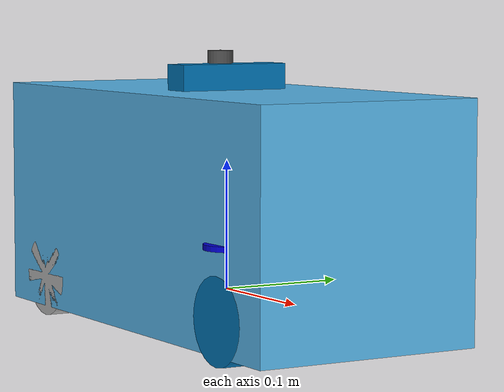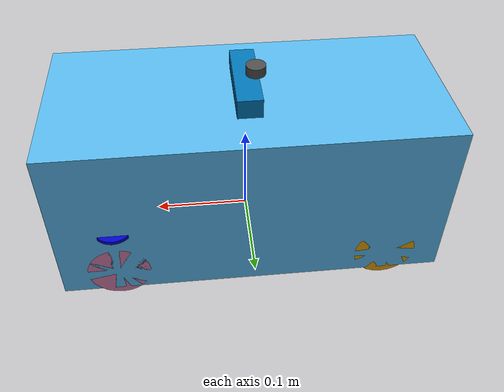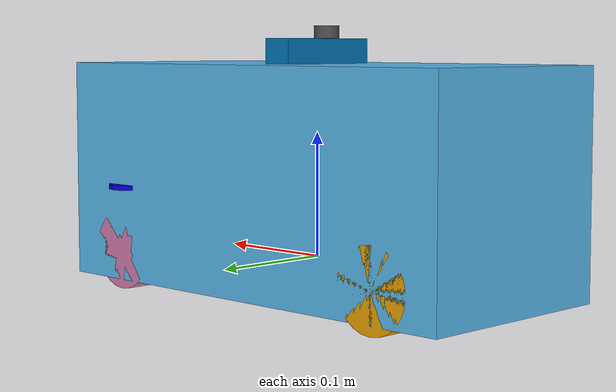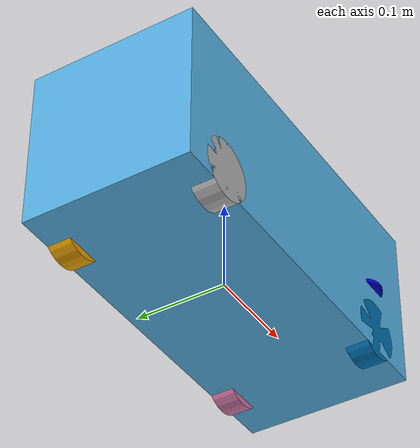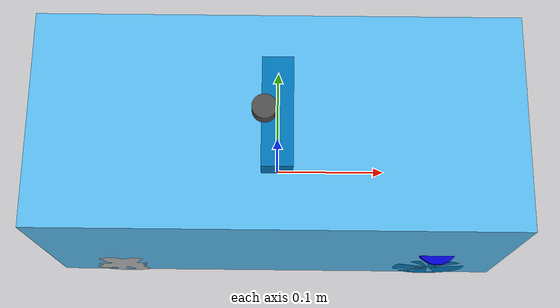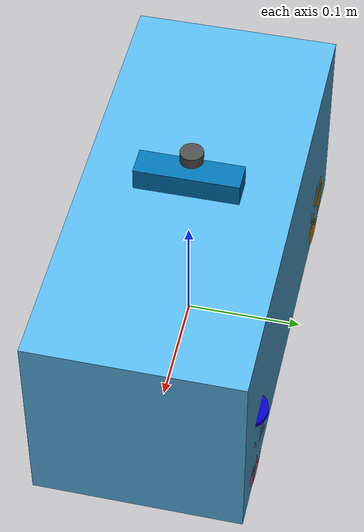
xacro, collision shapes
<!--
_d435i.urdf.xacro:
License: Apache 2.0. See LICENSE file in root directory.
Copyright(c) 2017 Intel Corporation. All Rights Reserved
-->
<?xml version="1.0"?>
<robot name="car" xmlns:xacro="http://wiki.ros.org/xacro">
  <!-- Include xacro for inertials, materials and wheels -->
  <xacro:include filename="$(find robot_description)/urdf/wheel.xacro"/>
  <xacro:include filename="$(find robot_description)/urdf/lidar.xacro"/>
  <xacro:include filename="$(find robot_description)/urdf/_d435i.urdf.xacro"/>
  <xacro:include filename="$(find robot_description)/urdf/inertials.xacro"/>

  <xacro:property name="robot_namespace" value="/car"/>
   <gazebo>
    <!-- Load ros_control plugin using the steer_bot_hardware_gazebo
    implementation of the hardware_interface::RobotHW -->
    <plugin name="gazebo_ros_control" filename="libgazebo_ros_control.so">
      <robotNamespace>${robot_namespace}</robotNamespace>
      <robotSimType>steer_bot_hardware_gazebo/SteerBotHardwareGazebo</robotSimType>
      <legacyModeNS>false</legacyModeNS>
    </plugin>
  </gazebo>

  <!-- Math constants -->
  <xacro:property name="deg_to_rad" value="0.01745329251994329577"/>

  <!-- Robot dimensions -->
  <xacro:property name="car_length" value="0.4" />
  <xacro:property name="car_width" value="0.18" />
  <xacro:property name="car_height" value="0.18" />
  <xacro:property name="car_mass" value="2" />

  <!-- Wheel link dimensions -->
  <xacro:property name="wheel_radius" value="0.0325" />
  <xacro:property name="wheel_thickness" value="0.025" />
  <xacro:property name="wheel_mass" value="0.00355" />

  <!-- Steering link dimensions -->
  <xacro:property name="steer_radius" value="0.02" />
  <xacro:property name="steer_thickness" value="0.004" />
  <xacro:property name="steer_mass" value="0.0008" />

  <!-- Axle positions -->
  <xacro:property name="axle_offset" value="0.14" />
  <xacro:property name="steer_offset" value="0.02" />

  <xacro:macro name="dummy_visual">
    <visual>
      <geometry>
        <box size =".001 .001 .001"/>
      </geometry>
      <xacro:default_origin />
    </visual>
  </xacro:macro>

  <xacro:macro name="default_origin">
       <origin xyz="0 0 0" rpy="0 0 0"/>
  </xacro:macro>

  <!-- Base link -->
  <link name="base_link">
    <collision>
        <xacro:default_origin />
        <geometry>
            <box size="0.001 0.001 0.001"/>
        </geometry>
    </collision>
    <xacro:dummy_visual />
  </link>

  <link name="body">
    <xacro:solid_cuboid_inertial
        rpy="0 0 0" xyz="0 0 0"
        mass="${car_mass}"
        x="${car_length}" y="${car_width}" z="${car_height}" />

    <collision>
        <xacro:default_origin />
        <geometry>
            <box size="${car_length} ${car_width} ${car_height}"/>
        </geometry>
    </collision>

    <visual>
      <geometry>
        <!--Dimensions: 37x20xheight   height may very depending on components, should be ~20cm-->
        <mesh filename="package://robot_description/models/car_robot/meshes/car.dae"/>
      </geometry>
      <origin rpy="0 0 0" xyz="0.01 0 0"/>
      <xacro:default_origin />
    </visual>
  </link>

  <joint name="base_link_to_body" type="fixed">
    <parent link="base_link"/>
    <child link="body"/>
    <origin xyz="0 0 ${wheel_radius*2}"/>
    <axis   xyz="0 1 0"/>
  </joint>

  <!-- Front steer and rear wheel joints required for ackermann_steering_controller -->
  <xacro:front_steer
    name="front"
    parent="base"
    steer_radius="${steer_radius}"
    steer_thickness="${steer_thickness}"
    steer_mass="${steer_mass}"
    axle_offset="${axle_offset}"
    steer_height="${wheel_radius+steer_offset}">
  </xacro:front_steer>

  <!-- Steerable front side wheels -->
  <xacro:front_wheel_lr
    name="front_right"
    parent="base"
    reflect="-1"
    wheel_radius="${wheel_radius}"
    wheel_thickness="${wheel_thickness}"
    wheel_mass="${wheel_mass}"
    wheel_is_right="1"
    steer_radius="${steer_radius}"
    steer_thickness="${steer_thickness}"
    steer_mass="${steer_mass}"
    car_length="${car_length}"
    car_width="${car_width}"
    axle_offset="${axle_offset}"
    steer_height="${wheel_radius+steer_offset}">
  </xacro:front_wheel_lr>
  <xacro:front_wheel_lr
    name="front_left"
    parent="base"
    reflect="1"
    wheel_radius="${wheel_radius}"
    wheel_thickness="${wheel_thickness}"
    wheel_mass="${wheel_mass}"
    wheel_is_right="0"
    steer_radius="${steer_radius}"
    steer_thickness="${steer_thickness}"
    steer_mass="${steer_mass}"
    car_length="${car_length}"
    car_width="${car_width}"
    axle_offset="${axle_offset}"
    steer_height="${wheel_radius+steer_offset}">
  </xacro:front_wheel_lr>

  <!-- Rear side wheels -->
  <xacro:rear_wheel_lr
    name="rear_right"
    parent="base"
    wheel_radius="${wheel_radius}"
    wheel_thickness="${wheel_thickness}"
    wheel_mass="${wheel_mass}"
    wheel_is_right="1">
    <origin xyz="${-axle_offset} ${-car_width/2+wheel_thickness/2} 0" rpy="${-90 * deg_to_rad} 0 0"/>
  </xacro:rear_wheel_lr>
  <xacro:rear_wheel_lr
    name="rear_left"
    parent="base"
    wheel_radius="${wheel_radius}"
    wheel_thickness="${wheel_thickness}"
    wheel_mass="${wheel_mass}"
    wheel_is_right="0">
    <origin xyz="${-axle_offset} ${+car_width/2-wheel_thickness/2} 0" rpy="${-90 * deg_to_rad} 0 0"/>
  </xacro:rear_wheel_lr>

  <!-- rear drive wheel -->
  <xacro:rear_wheel
    name="rear"
    parent="base"
    drive_wheel_radius="${wheel_radius/4}"
    drive_wheel_thickness="${wheel_thickness/2}"
    drive_wheel_mass="${wheel_mass/32}">
    <origin xyz="${-axle_offset} 0 0" rpy="${-90 * deg_to_rad} 0 0"/>
  </xacro:rear_wheel>

  <!--  SENSORS-->
  <xacro:lidar parent="base_link"/>
  <xacro:sensor_d435i parent="base_link"
                      name="D435i_camera"
                      topics_ns="D435i_camera"
                      enable_pointCloud="true"
                      color_width="960"
                      color_height="520"
                      align_depth="true"
                      color_fps="30"
                      depth_width="640"
                      depth_height="360"
                      depth_fps="30">
    <origin xyz="0.0 0.0 0.15" rpy="0.0 0.0 0.0"/>
  </xacro:sensor_d435i>

  <gazebo reference="base_link">
  </gazebo>

</robot>

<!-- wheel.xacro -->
<robot name="wheel" xmlns:xacro="http://wiki.ros.org/xacro">
  <!-- Include xacro for materials and inertials -->
  <xacro:include filename="$(find robot_description)/urdf/materials.xacro"/>
  <xacro:include filename="$(find robot_description)/urdf/inertials.xacro"/>

  <!-- Math constants -->
  <xacro:property name="deg_to_rad" value="0.01745329251994329577"/>

  <!-- Properties -->
  <xacro:property name="steer_effort" value="10.0"/>
  <xacro:property name="steer_velocity" value="5.0"/>
  <xacro:property name="steer_limit_deg" value="60.0"/>

  <!-- Wheel visualization macro -->
  <xacro:macro name="wheel_visual" params="roll">
    <visual>
      <geometry>
        <mesh filename="package://robot_description/models/car_robot/meshes/wheel.dae"/>
      </geometry>
      <origin xyz="0 0 0" rpy="${roll} 0 0"/>
    </visual>
  </xacro:macro>

  <!-- Steering wheel -->
  <xacro:macro name="front_steer"
    params="
      name
      parent
      steer_radius
      steer_thickness
      steer_mass
      axle_offset
      steer_height">
    <link name="${name}_steer_link">
      <visual>
        <origin xyz="0 0 0" rpy="0 0 0"/>
        <geometry>
          <cylinder radius="${steer_radius}" length="${steer_thickness}"/>
        </geometry>
        <material name="steering_wheel" />
      </visual>
      <collision>
        <origin xyz="0 0 0" rpy="0 0 0"/>
        <geometry>
          <cylinder radius="${steer_radius}" length="${steer_thickness}"/>
        </geometry>
      </collision>
      <xacro:solid_cylinder_inertial
          rpy="0 0 0" xyz="0 0 0"
          mass="${steer_mass}"
          radius="${steer_radius}" length="${steer_thickness}" />
    </link>

    <joint name="${name}_steer_joint" type="revolute">
      <parent link="${parent}_link"/>
      <child link="${name}_steer_link"/>
      <origin xyz="${axle_offset} 0 ${steer_height}" rpy="0 0 0"/>
      <axis xyz="0 0 1"/>
      <limit effort="${steer_effort}"
             lower="${-steer_limit_deg * deg_to_rad}" upper="${steer_limit_deg * deg_to_rad}"
             velocity="${steer_velocity}"/>
    </joint>

    <transmission name="${name}_steer_joint_trans">
      <type>transmission_interface/SimpleTransmission</type>
      <actuator name="${name}_steer_joint_motor">
        <mechanicalReduction>1</mechanicalReduction>
        <hardwareInterface>hardware_interface/PositionJointInterface</hardwareInterface>
      </actuator>
      <joint name="${name}_steer_joint">
        <hardwareInterface>hardware_interface/PositionJointInterface</hardwareInterface>
      </joint>
    </transmission>

    <gazebo reference="${name}_steer_link">
      <material>Gazebo/Yellow</material>
    </gazebo>
  </xacro:macro>

  <!-- STEERING -->

  <!-- Car steering model front (steerable) wheel links (left/right) -->
  <xacro:macro name="front_wheel_lr"
    params="
      name
      parent
      reflect
      wheel_radius
      wheel_thickness
      wheel_mass
      wheel_is_right
      steer_radius
      steer_thickness
      steer_mass
      car_length
      car_width
      axle_offset
      steer_height">
    <link name="${name}_steer_link">
      <visual>
        <origin xyz="0 0 0" rpy="0 0 0"/>
        <geometry>
          <cylinder radius="${steer_radius/4}" length="${steer_thickness/4}"/>
        </geometry>
        <material name="blue" />
      </visual>
      <collision>
        <origin xyz="0 0 0" rpy="0 0 0"/>
        <geometry>
          <cylinder radius="${steer_radius}" length="${steer_thickness}"/>
        </geometry>
      </collision>
      <xacro:solid_cylinder_inertial
          rpy="0 0 0" xyz="0 0 0"
          mass="${steer_mass}"
          radius="${steer_radius}" length="${steer_thickness}" />
    </link>

    <joint name="${name}_steer_joint" type="revolute">
      <parent link="${parent}_link"/>
      <child link="${name}_steer_link"/>
      <origin xyz="${axle_offset} ${reflect*(car_width/2-wheel_thickness/2)} ${steer_height}" rpy="0 0 0"/>
      <axis xyz="0 0 1"/>
      <limit effort="${steer_effort}"
             lower="${steer_limit_deg * deg_to_rad * -1.0}" upper="${steer_limit_deg * deg_to_rad}"
             velocity="${steer_velocity}"/>
    </joint>

    <link name="${name}_wheel_link">
      <xacro:wheel_visual roll="${wheel_is_right*180*deg_to_rad}"/>
      <collision>
        <origin xyz="0 0 0" rpy="${wheel_is_right*180*deg_to_rad} 0 0"/>
        <geometry>
          <cylinder radius="${wheel_radius}" length="${wheel_thickness}"/>
        </geometry>
      </collision>
      <xacro:solid_cylinder_inertial
          rpy="${wheel_is_right*180*deg_to_rad} 0 0" xyz="0 0 0"
          mass="${wheel_mass}"
          radius="${wheel_radius}" length="${wheel_thickness}" />
    </link>

    <joint name="${name}_wheel_joint" type="continuous">
      <parent link="${name}_steer_link"/>
      <child link="${name}_wheel_link"/>
      <origin xyz="0 0 ${-steer_height}" rpy="${-90 * deg_to_rad} 0 0"/>
      <axis xyz="0 0 1"/>
    </joint>

    <transmission name="${name}_steer_joint_trans">
      <type>transmission_interface/SimpleTransmission</type>
      <actuator name="${name}_steer_joint_motor">
        <mechanicalReduction>1</mechanicalReduction>
        <hardwareInterface>hardware_interface/PositionJointInterface</hardwareInterface>
      </actuator>
      <joint name="${name}_steer_joint">
        <hardwareInterface>hardware_interface/PositionJointInterface</hardwareInterface>
      </joint>
    </transmission>

    <transmission name="${name}_wheel_joint_trans">
      <type>transmission_interface/SimpleTransmission</type>
      <actuator name="${name}_wheel_joint_motor">
        <mechanicalReduction>1</mechanicalReduction>
        <hardwareInterface>hardware_interface/VelocityJointInterface</hardwareInterface>
      </actuator>
      <joint name="${name}_wheel_joint">
        <hardwareInterface>hardware_interface/VelocityJointInterface</hardwareInterface>
      </joint>
    </transmission>

    <gazebo reference="${name}_steer_link">
      <material>Gazebo/Blue</material>
    </gazebo>

    <gazebo reference="${name}_wheel_link">
      <kp>1e15</kp>
      <kd>1e13</kd>
    </gazebo>
  </xacro:macro>

  <!-- Car steering model rear wheel links (left/right) -->
  <xacro:macro name="rear_wheel_lr"
    params="
      name
      parent
      wheel_radius
      wheel_thickness
      wheel_mass
      wheel_is_right
      *origin">
    <link name="${name}_wheel_link">
      <xacro:wheel_visual roll="${wheel_is_right*180*deg_to_rad}"/>
      <collision>
        <origin xyz="0 0 0" rpy="${wheel_is_right*180*deg_to_rad} 0 0"/>
        <geometry>
          <cylinder radius="${wheel_radius}" length="${wheel_thickness}"/>
        </geometry>
      </collision>
      <xacro:solid_cylinder_inertial
          rpy="${wheel_is_right*180*deg_to_rad} 0 0" xyz="0 0 0"
          mass="${wheel_mass}"
          radius="${wheel_radius}" length="${wheel_thickness}" />
    </link>

    <joint name="${name}_wheel_joint" type="continuous">
      <parent link="${parent}_link"/>
      <child link="${name}_wheel_link"/>
      <xacro:insert_block name="origin"/>
      <axis xyz="0 0 1"/>
    </joint>

    <transmission name="${name}_wheel_joint_trans">
      <type>transmission_interface/SimpleTransmission</type>
      <actuator name="${name}_wheel_joint_motor">
        <mechanicalReduction>1</mechanicalReduction>
        <hardwareInterface>hardware_interface/VelocityJointInterface</hardwareInterface>
      </actuator>
      <joint name="${name}_wheel_joint">
        <hardwareInterface>hardware_interface/VelocityJointInterface</hardwareInterface>
      </joint>
    </transmission>

    <gazebo reference="${name}_wheel_link">
      <kp>1e15</kp>
      <kd>1e13</kd>
    </gazebo>
  </xacro:macro>

  <!-- DRIVE -->

  <!-- rear drive wheel -->
  <xacro:macro name="rear_wheel"
    params="
      name
      parent
      drive_wheel_radius
      drive_wheel_thickness
      drive_wheel_mass
      *origin">
    <link name="${name}_wheel_link">
      <visual>
        <origin xyz="0 0 0" rpy="0 0 0"/>
        <geometry>
          <cylinder radius="${drive_wheel_radius}" length="${drive_wheel_thickness}"/>
        </geometry>
        <material name="yellow" />
      </visual>
      <collision>
        <origin xyz="0 0 0" rpy="0 0 0"/>
        <geometry>
          <cylinder radius="${drive_wheel_radius}" length="${drive_wheel_thickness}"/>
        </geometry>
      </collision>
      <xacro:solid_cylinder_inertial
          rpy="0 0 0" xyz="0 0 0"
          mass="${drive_wheel_mass}"
          radius="${drive_wheel_radius}" length="${drive_wheel_thickness}" />
    </link>

    <joint name="${name}_wheel_joint" type="continuous">
      <parent link="${parent}_link"/>
      <child link="${name}_wheel_link"/>
      <xacro:insert_block name="origin"/>
      <axis xyz="0 0 1"/>
    </joint>

    <transmission name="${name}_wheel_joint_trans">
      <type>transmission_interface/SimpleTransmission</type>
      <actuator name="${name}_wheel_joint_motor">
        <mechanicalReduction>1</mechanicalReduction>
        <hardwareInterface>hardware_interface/VelocityJointInterface</hardwareInterface>
      </actuator>
      <joint name="${name}_wheel_joint">
        <hardwareInterface>hardware_interface/VelocityJointInterface</hardwareInterface>
      </joint>
    </transmission>

    <gazebo reference="${name}_wheel_link">
      <material>Gazebo/Yellow</material>
    </gazebo>
  </xacro:macro>

  <!-- front drive wheel (passive - no transmission) -->
  <xacro:macro name="front_wheel"
    params="
      name
      parent
      wheel_radius
      wheel_thickness
      wheel_mass
      *origin">
    <link name="${name}_wheel_link">
      <visual>
        <origin xyz="0 0 0" rpy="0 0 0"/>
        <geometry>
          <cylinder radius="${wheel_radius}" length="${wheel_thickness}"/>
        </geometry>
        <material name="yellow" />
      </visual>
      <collision>
        <origin xyz="0 0 0" rpy="0 0 0"/>
        <geometry>
          <cylinder radius="${wheel_radius}" length="${wheel_thickness}"/>
        </geometry>
      </collision>
      <xacro:solid_cylinder_inertial
          rpy="0 0 0" xyz="0 0 0"
          mass="${wheel_mass}"
          radius="${wheel_radius}" length="${wheel_thickness}" />
    </link>

    <joint name="${name}_wheel_joint" type="continuous">
      <parent link="${parent}_link"/>
      <child link="${name}_wheel_link"/>
      <xacro:insert_block name="origin"/>
      <axis xyz="0 0 1"/>
    </joint>

    <gazebo reference="${name}_wheel_link">
    </gazebo>

    <gazebo reference="${name}_wheel_joint">
      <provideFeedback>true</provideFeedback>
    </gazebo>
  </xacro:macro>

</robot>

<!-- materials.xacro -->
<!--  xacro macros for robot materials.
 -->
<robot name="materials" xmlns:xacro="http://wiki.ros.org/xacro">
   <material name="red">
        <color rgba="0.8 0 0 1"/>
    </material>

    <material name="green">
        <color rgba="0 0.8 0 1"/>
    </material>

    <material name="blue">
        <color rgba="0 0 0.8 1"/>
    </material>

    <material name="yellow">
        <color rgba="0.8 0.8 0 1"/>
    </material>

    <material name="orange">
        <color rgba="0.8 0.25 0 1"/>
    </material>

    <material name="black">
        <color rgba="0 0 0 1"/>
    </material>

    <material name="dark_gray">
        <color rgba="0.5 0.5 0.5 1"/>
    </material>

    <material name="gray">
        <color rgba="0.753 0.753 0.753 1"/>
    </material>

    <material name="silver">
        <color rgba="0.88 0.88 0.88 1"/>
    </material>

    <material name="white">
        <color rgba="1 1 1 1"/>
    </material>

    <material name="steering_wheel">
        <color rgba="0 0 0 0.4"/>
    </material>
</robot>

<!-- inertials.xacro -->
<!--  xacro macros for inertials.
    Define xacro macros for math constants and inertials:

    - solid cuboid
    - solid cylinder
    - null (a placeholder inertial for logical link elements)
 -->
<robot name="inertials" xmlns:xacro="http://wiki.ros.org/xacro">

    <!-- Math constants -->
    <xacro:property name="math_pi"        value="3.141592653589793" />
    <xacro:property name="math_pi_over_2" value="1.5707963267948966" />
    <xacro:property name="math_pi_over_4" value="0.785398163397448" />

    <!-- Inertial for solid cuboid with dimensions x y z  -->
    <xacro:macro name="solid_cuboid_inertial" params="rpy xyz mass x y z">
        <inertial>
            <origin rpy="${rpy}" xyz="${xyz}"/>
            <mass value="${mass}" />
            <inertia
                ixx="${mass * (y * y + z * z) / 12.0}" ixy="0.0" ixz="0.0"
                iyy="${mass * (x * x + z * z) / 12.0}" iyz="0.0"
                izz="${mass * (x * x + y * y) / 12.0}" />
        </inertial>
    </xacro:macro>

    <!-- Inertial for solid cylinder with radius and length aligned to z-axis  -->
    <xacro:macro name="solid_cylinder_inertial" params="rpy xyz mass radius length">
        <inertial>
            <origin rpy="${rpy}" xyz="${xyz}"/>
            <mass value="${mass}" />
            <inertia
                ixx="${mass * (3.0 * radius * radius + length * length) / 12.0}" ixy="0.0" ixz="0.0"
                iyy="${mass * (3.0 * radius * radius + length * length) / 12.0}" iyz="0.0"
                izz="${mass * (radius * radius) / 2.0}" />
        </inertial>
    </xacro:macro>

    <!-- A null inertial - used in placeholder links to esure the model will work in Gazebo -->
    <xacro:macro name="null_inertial">
        <inertial>
            <mass value="0.001"/>
            <inertia ixx="0.001" ixy="0" ixz="0" iyy="0.001" iyz="0" izz="0.001"/>
        </inertial>
    </xacro:macro>
</robot>

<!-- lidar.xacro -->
<model name="lidar" xmlns:xacro="http://wiki.ros.org/xacro">

  <xacro:macro name="lidar" params="parent">
    <joint name="hokuyo_joint" type="fixed">
      <axis xyz="0 1 0" />
      <origin xyz="-0.01 0 0.18" rpy="0 0 0"/>
      <parent link="${parent}"/>
      <child link="car/hokuyo_link"/>
    </joint>

    <!-- Hokuyo Laser -->
    <link name="car/hokuyo_link">
      <collision>
        <origin xyz="0 0 0" rpy="0 0 0"/>
        <geometry>
          <cylinder radius="0.01" length="0.01"/>
        </geometry>
      </collision>

      <visual>
        <origin xyz="-0.06 0 -0.03" rpy="0 0 0"/>
        <geometry>
          <mesh filename="package://robot_description/models/car_robot/meshes/ydlidar.dae"/>
        </geometry>
      </visual>

      <inertial>
        <mass value="0.1" />
        <origin xyz="0 0 0" rpy="0 0 0"/>
        <inertia ixx="1e-6" ixy="0" ixz="0" iyy="1e-6" iyz="0" izz="1e-6" />
      </inertial>
    </link>

    <gazebo reference="car/hokuyo_link">
      <material>Gazebo/DarkGrey</material>
      <sensor type="ray" name="head_hokuyo_sensor">
        <pose>0 0 0 0 0 0</pose>
        <visualize>false</visualize>
        <update_rate>40</update_rate>
        <ray>
          <scan>
            <horizontal>
              <samples>720</samples>
              <resolution>1</resolution>
              <min_angle>-3.145</min_angle>
              <max_angle>3.145</max_angle>
            </horizontal>
          </scan>
          <range>
            <min>0.10</min>
            <max>8.0</max>
            <resolution>0.01</resolution>
          </range>
          <noise>
            <type>gaussian</type>
            <mean>0.0</mean>
            <stddev>0.001</stddev>
          </noise>
        </ray>
        <plugin name="gazebo_ros_head_hokuyo_controller" filename="libgazebo_ros_laser.so">
          <topicName>/car/laser/scan</topicName>
          <frameName>hokuyo_link</frameName>
        </plugin>
      </sensor>
    </gazebo>
  </xacro:macro>
</model>

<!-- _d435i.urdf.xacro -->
<robot name="sensor_d435i" xmlns:xacro="http://ros.org/wiki/xacro">
  <!--File includes-->
  <xacro:include filename="$(find robot_description)/urdf/_d435i.gazebo.xacro"/>
    <xacro:include filename="$(find robot_description)/urdf/inertials.xacro"/>

  <xacro:macro name="sensor_d435i" params="parent
                                          name:=camera
                                          topics_ns:=camera
                                          visualize:=false
                                          align_depth:=false
                                          enable_pointCloud:=false
                                          unite_imu_method:=false
                                          accel_fps:=250
                                          gyro_fps:=400
                                          clip_distance:=-1.0
                                          depth_width:=1280
                                          depth_height:=720
                                          depth_fps:=30
                                          infra_width:=640
                                          infra_height:=480
                                          infra_fps:=30
                                          color_width:=1920
                                          color_height:=1080
                                          color_fps:=30
                                          *origin">
    <xacro:property name="M_PI" value="3.1415926535897931"/>

    <!-- The following values are approximate, and the camera node
     publishing TF values with actual calibrated camera extrinsic values -->
    <xacro:property name="d435i_cam_depth_to_left_ir_offset" value="0.0"/>
    <xacro:property name="d435i_cam_depth_to_right_ir_offset" value="-0.050"/>
    <xacro:property name="d435i_cam_depth_to_color_offset" value="0.015"/>

    <!-- The following values model the aluminum peripherial case for the
  	D435 camera, with the camera joint represented by the actual
  	peripherial camera tripod mount -->
    <xacro:property name="d435i_cam_width" value="0.090"/>
    <xacro:property name="d435i_cam_height" value="0.025"/>
    <xacro:property name="d435i_cam_depth" value="0.02505"/>
    <xacro:property name="d435i_cam_mount_from_center_offset" value="0.0149"/>

    <!-- The following offset is relative the the physical D435 camera peripherial
  	camera tripod mount -->
    <xacro:property name="d435i_cam_depth_px" value="${d435i_cam_mount_from_center_offset}"/>
    <xacro:property name="d435i_cam_depth_py" value="0.0"/>
    <xacro:property name="d435i_cam_depth_pz" value="${d435i_cam_height/2}"/>

    <material name="${name}_aluminum">
	  <color rgba="0.5 0.5 0.5 1"/>
    </material>

    <!-- camera body, with origin at bottom screw mount -->
    <joint name="${name}_joint" type="fixed">
      <xacro:insert_block name="origin"/>
      <parent link="${parent}"/>
      <child link="${name}_bottom_screw_frame"/>
    </joint>
    <link name="${name}_bottom_screw_frame"/>

    <joint name="${name}_link_joint" type="fixed">
      <origin xyz="0 ${d435i_cam_depth_py} ${d435i_cam_depth_pz}" rpy="0 0 0"/>
      <parent link="${name}_bottom_screw_frame"/>
      <child link="${name}_link"/>
    </joint>

    <link name="${name}_link">
      <visual>
      <origin xyz="${d435i_cam_mount_from_center_offset} ${-d435i_cam_depth_py} 0" rpy="${M_PI/2} 0 ${M_PI/2}"/>
        <geometry>
        <mesh filename="package://robot_description/models/car_robot/meshes/d435.dae"/>
        </geometry>
      </visual>
      <collision>
        <origin xyz="0 ${-d435i_cam_depth_py} 0" rpy="0 0 0"/>
        <geometry>
        <box size="${d435i_cam_depth} ${d435i_cam_width} ${d435i_cam_height}"/>
        </geometry>
      </collision>
        <!-- The following are not reliable values, and should not be used for modeling -->
        <origin xyz="0 0 0"/>
        <xacro:solid_cuboid_inertial
            rpy="0 0 0" xyz="0 0 0"
            mass="0.072"
            x="${d435i_cam_depth}" y="${d435i_cam_width}" z="${d435i_cam_height}" />
    </link>

    <!-- camera depth joints and links -->
    <joint name="${name}_depth_joint" type="fixed">
      <origin xyz="0 0 0" rpy="0 0 0"/>
      <parent link="${name}_link"/>
      <child link="${name}_depth_frame"/>
    </joint>
    <link name="${name}_depth_frame"/>

    <joint name="${name}_depth_optical_joint" type="fixed">
      <origin xyz="0 0 0" rpy="${-M_PI/2} 0 ${-M_PI/2}"/>
      <parent link="${name}_depth_frame"/>
      <child link="${name}_depth_optical_frame"/>
    </joint>
    <link name="${name}_depth_optical_frame"/>

    <!-- camera left IR joints and links -->
    <joint name="${name}_left_ir_joint" type="fixed">
      <origin xyz="0 ${d435i_cam_depth_to_left_ir_offset} 0" rpy="0 0 0"/>
      <parent link="${name}_depth_frame"/>
      <child link="${name}_left_ir_frame"/>
    </joint>
    <link name="${name}_left_ir_frame"/>

    <joint name="${name}_left_ir_optical_joint" type="fixed">
      <origin xyz="0 0 0" rpy="${-M_PI/2} 0 ${-M_PI/2}"/>
      <parent link="${name}_left_ir_frame"/>
      <child link="${name}_left_ir_optical_frame"/>
    </joint>
    <link name="${name}_left_ir_optical_frame"/>

    <!-- camera right IR joints and links -->
    <joint name="${name}_right_ir_joint" type="fixed">
      <origin xyz="0 ${d435i_cam_depth_to_right_ir_offset} 0" rpy="0 0 0"/>
      <parent link="${name}_depth_frame"/>
      <child link="${name}_right_ir_frame"/>
    </joint>
    <link name="${name}_right_ir_frame"/>

    <joint name="${name}_right_ir_optical_joint" type="fixed">
      <origin xyz="0 0 0" rpy="${-M_PI/2} 0 ${-M_PI/2}"/>
      <parent link="${name}_right_ir_frame"/>
      <child link="${name}_right_ir_optical_frame"/>
    </joint>
    <link name="${name}_right_ir_optical_frame"/>

    <!-- camera color joints and links -->
    <joint name="${name}_color_joint" type="fixed">
      <origin xyz="0 ${d435i_cam_depth_to_color_offset} 0" rpy="0 0 0"/>
      <parent link="${name}_depth_frame"/>
      <child link="${name}_color_frame"/>
    </joint>
    <link name="${name}_color_frame"/>

    <joint name="${name}_color_optical_joint" type="fixed">
      <origin xyz="0 0 0" rpy="${-M_PI/2} 0 ${-M_PI/2}"/>
      <parent link="${name}_color_frame"/>
      <child link="${name}_color_optical_frame"/>
    </joint>
    <link name="${name}_color_optical_frame"/>

    <!-- camera accel joints and links -->
    <joint name="${name}_accel_joint" type="fixed">
      <origin xyz="-0.00174 0.00552 0.0176" rpy="0 0 0"/>
      <parent link="${name}_link"/>
      <child link="${name}_accel_frame"/>
    </joint>
    <link name="${name}_accel_frame"/>

    <joint name="${name}_accel_optical_joint" type="fixed">
      <origin xyz="0 0 0" rpy="${-M_PI/2} 0 ${-M_PI/2}"/>
      <parent link="${name}_accel_frame"/>
      <child link="${name}_accel_optical_frame"/>
    </joint>
    <link name="${name}_accel_optical_frame"/>

    <!-- camera gyro joints and links -->
    <joint name="${name}_gyro_joint" type="fixed">
      <origin xyz="-0.00174 0.00552 0.0176" rpy="0 0 0"/>
      <parent link="${name}_link"/>
      <child link="${name}_gyro_frame"/>
    </joint>
    <link name="${name}_gyro_frame"/>

    <joint name="${name}_gyro_optical_joint" type="fixed">
      <origin xyz="0 0 0" rpy="${-M_PI/2} 0 ${-M_PI/2}"/>
      <parent link="${name}_gyro_frame"/>
      <child link="${name}_gyro_optical_frame"/>
    </joint>
    <link name="${name}_gyro_optical_frame"/>

    <!-- Realsense Gazebo Plugin -->
    <xacro:gazebo_d435i camera_name="${name}"
                        topics_ns="${topics_ns}"
                        reference_link="${name}_link"

                        depth_optical_frame="${name}_depth_optical_frame"
                        depth_width="${depth_width}"
                        depth_height="${depth_height}"
                        depth_fps="${depth_fps}"

                        color_optical_frame="${name}_color_optical_frame"
                        color_width="${color_width}"
                        color_height="${color_height}"
                        color_fps="${color_fps}"

                        infrared1_optical_frame="${name}_left_ir_optical_frame"
                        infrared2_optical_frame="${name}_right_ir_optical_frame"
                        infra_width="${infra_width}"
                        infra_height="${infra_height}"
                        infra_fps="${infra_fps}"

                        accel_optical_frame="${name}_accel_optical_frame"
                        gyro_optical_frame="${name}_gyro_optical_frame"
                        accel_fps="${accel_fps}"
                        gyro_fps="${gyro_fps}"

                        enable_pointCloud="${enable_pointCloud}"
                        unite_imu_method="${unite_imu_method}"
                        clip_distance="${clip_distance}"
                        align_depth="${align_depth}"
                        visualize="${visualize}"
    />

  </xacro:macro>
</robot>
